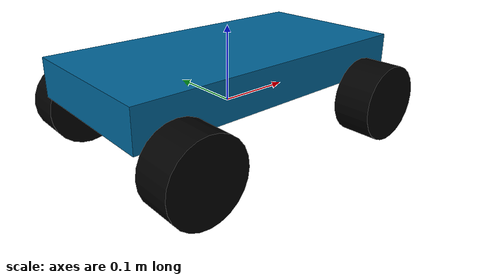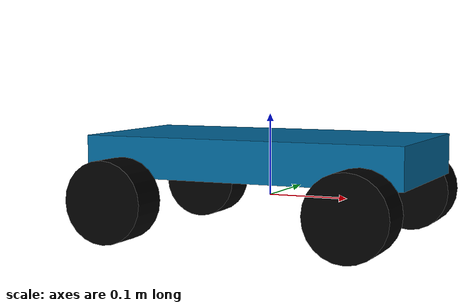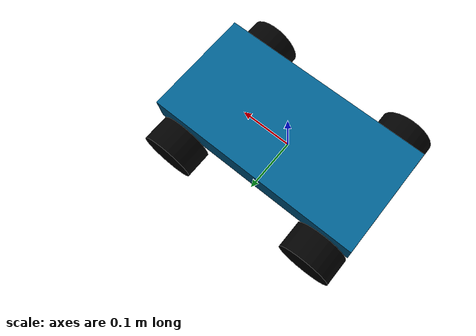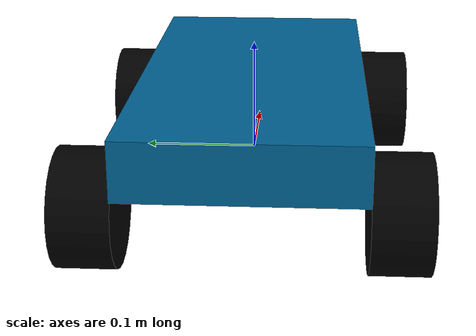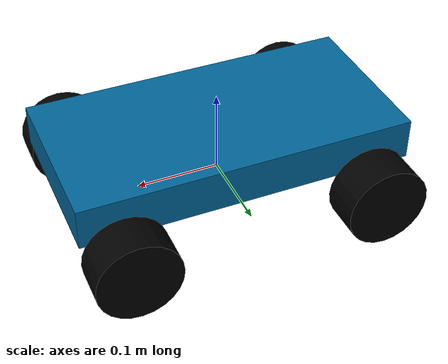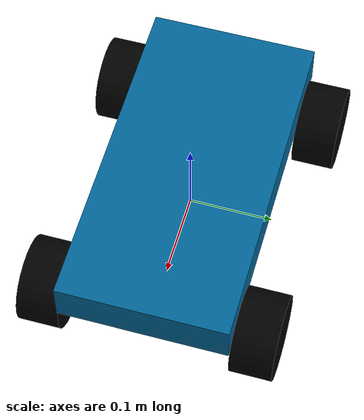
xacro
<?xml version="1.0"?>
<!-- XML namespaces -->
<robot xmlns:xacro="http://www.ros.org/wiki/xacro" name="traverser" >

    <!-- Include xacro files-->
    <xacro:include filename="$(find traverser)/urdf/utility_macros/common.urdf.xacro" />
    <xacro:include filename="$(find traverser)/urdf/actuators/wheel.urdf.xacro" />

    <!--Custom robot params-->
    <xacro:property name="platform_length" value= "0.4" />
    <xacro:property name="platform_width" value= "0.2" />
    <xacro:property name="platform_height" value= "0.05" />
    <xacro:property name="wheel_thickness" value= "0.05" />
    <xacro:property name="wheel_radius" value= "0.05" />

    <material name="black">
        <color rgba="0 0 0 1"/>
    </material>

    <material name="blue">
        <color rgba="0 0.4 0.6 1"/>
    </material>

    <link name="base_link">
        <visual>
            <geometry>
                <box size="${platform_length}
                           ${platform_width}
                           ${platform_height}"/>
            </geometry>
            <origin rpy="0 0 0" xyz="0 0 ${platform_height}"/>
            <material name="blue"/>
        </visual>

        <collision>
            <geometry>
                <box size="${platform_length}
                           ${platform_width}
                           ${platform_height}"/>
            </geometry>
            <origin rpy="0 0 0" xyz="0 0 ${platform_height}"/>
        </collision>

        <xacro:cuboid_inertia mass="12" length="${platform_length}"
                              breadth="${platform_width}"
                              height="${platform_height}" />

    </link>

    <!-- Wheels -->
    <xacro:wheel name="right_front" parent="base_link"
                 length="${wheel_thickness}" radius="${wheel_radius}">
        <origin xyz="${(platform_length/2)-wheel_radius}
                     ${-1*((platform_width/2)+(wheel_thickness/2))}
                     0"
                rpy="${-pi/2} 0 0" />
        <material name="black"/>
    </xacro:wheel>

    <xacro:wheel name="left_front" parent="base_link"
                 length="${wheel_thickness}" radius="${wheel_radius}">
        <origin xyz="${(platform_length/2)-wheel_radius}
                     ${1*((platform_width/2)+(wheel_thickness/2))}
                     0"
                rpy="${-pi/2} 0 0" />
        <material name="black"/>
    </xacro:wheel>

    <xacro:wheel name="right_back" parent="base_link"
                 length="${wheel_thickness}" radius="${wheel_radius}">
        <origin xyz="${-1*((platform_length/2)-wheel_radius)}
                     ${-1*((platform_width/2)+(wheel_thickness/2))}
                     0"
                rpy="${-pi/2} 0 0" />
        <material name="black"/>
    </xacro:wheel>

    <xacro:wheel name="left_back" parent="base_link"
                 length="${wheel_thickness}" radius="${wheel_radius}">
        <origin xyz="${-1*((platform_length/2)-wheel_radius)}
                     ${1*((platform_width/2)+(wheel_thickness/2))}
                     0"
                rpy="${-pi/2} 0 0" />
        <material name="black"/>
    </xacro:wheel>

</robot>

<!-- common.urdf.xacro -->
<!-- XML namespaces -->
<robot xmlns:xacro="http://www.ros.org/wiki/xacro">

    <xacro:macro name="cylinder_inertia" params="mass length radius
        center_of_mass_x:=0 center_of_mass_y:=0 center_of_mass_z:=0
        center_of_mass_roll:=0 center_of_mass_pitch:=0 center_of_mass_yaw:=0">
        <inertial>
            <origin xyz="${center_of_mass_x} ${center_of_mass_y} ${center_of_mass_z}"
                    rpy="${center_of_mass_roll} ${center_of_mass_pitch} ${center_of_mass_yaw}"/>
            <mass value="${mass}" />
            <inertia ixx="${(mass/12)*(3*radius*radius + length*length)}"
                     iyy="${(mass/12)*(3*radius*radius + length*length)}"
                     iyz="0.0" ixy="0.0" ixz="0.0"
                     izz="${(mass/2)*(radius*radius)}" />
        </inertial>
    </xacro:macro>

    <xacro:macro name="cuboid_inertia" params="mass length breadth height
        center_of_mass_x:=0 center_of_mass_y:=0 center_of_mass_z:=0
        center_of_mass_roll:=0 center_of_mass_pitch:=0 center_of_mass_yaw:=0">
        <inertial>
            <origin xyz="${center_of_mass_x} ${center_of_mass_y} ${center_of_mass_z}"
                    rpy="${center_of_mass_roll} ${center_of_mass_pitch} ${center_of_mass_yaw}"/>
            <mass value="${mass}" />
            <inertia ixx="${(mass/12)*(breadth*breadth + height*height)}"
                     iyy="${(mass/12)*(height*height + length*length)}"
                     iyz="0.0" ixy="0.0" ixz="0.0"
                     izz="${(mass/12)*(breadth*breadth + length*length)}" />
        </inertial>
    </xacro:macro>

    <xacro:macro name="sphere_inertia" params="mass radius
        center_of_mass_x:=0 center_of_mass_y:=0 center_of_mass_z:=0
        center_of_mass_roll:=0 center_of_mass_pitch:=0 center_of_mass_yaw:=0">
        <inertial>
            <origin xyz="${center_of_mass_x} ${center_of_mass_y} ${center_of_mass_z}"
                    rpy="${center_of_mass_roll} ${center_of_mass_pitch} ${center_of_mass_yaw}"/>
            <mass value="${mass}" />
            <inertia ixx="${(mass*0.4)*(radius*radius)}"
                     iyy="${(mass*0.4)*(radius*radius)}"
                     iyz="0.0" ixy="0.0" ixz="0.0"
                     izz="${(mass*0.4)*(radius*radius)}" />
        </inertial>
    </xacro:macro>

</robot>

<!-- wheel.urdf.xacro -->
<!-- XML namespaces -->
<robot xmlns:xacro="http://www.ros.org/wiki/xacro">
    <xacro:macro name="wheel" params="name parent length radius *origin
                                      *material">

        <joint name="${parent}_to_${name}_wheel" type="continuous">
            <axis xyz="0 0 1"/>
            <parent link="${parent}"/>
            <child link="${name}_wheel"/>
            <xacro:insert_block name="origin" />
        </joint>

        <link name="${name}_wheel">
            <visual>
                <geometry>
                    <cylinder length="${length}" radius="${radius}"/>
                </geometry>
                <xacro:insert_block name="material" />
            </visual>
        </link>

    </xacro:macro>
</robot>
